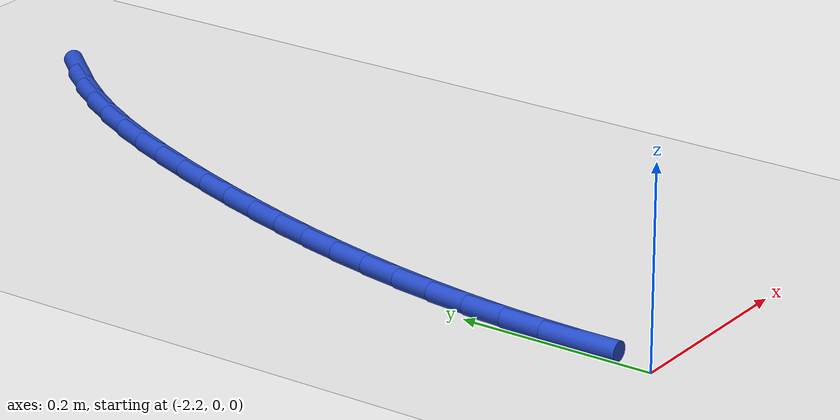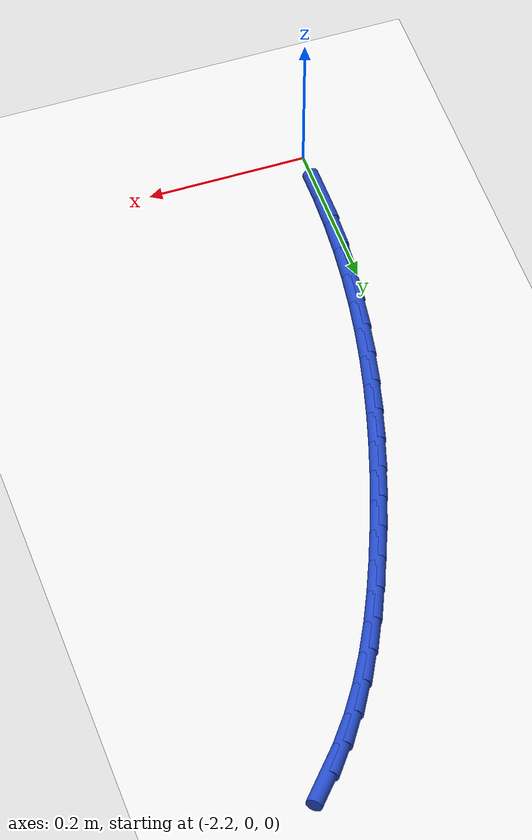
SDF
<sdf version="1.6">
 <world name="default">
  <model name="ground_plane">
   <static>1</static>
   <link name="link">
    <collision name="collision">
     <geometry><plane><normal>0 0 1</normal><size>100 100</size></plane></geometry>
     <surface><friction><ode><mu>100</mu><mu2>50</mu2></ode></friction></surface>
    </collision>
    <visual name="visual">
     <cast_shadows>0</cast_shadows>
     <geometry><plane><normal>0 0 1</normal><size>100 100</size></plane></geometry>
     <material>
      <script><uri>file://media/materials/scripts/gazebo.material</uri><name>Gazebo/WhiteGlow</name></script>
     </material>
    </visual>
   </link>
  </model>
  <model name="line">
   <link name="link_60">
    <pose>-1.9241924118541454 0.8781822889843405 0.01 0 1.57 0.8636986211424419</pose>
    <collision name="collision">
     <geometry><cylinder><radius>0.01</radius><length>0.08</length></cylinder></geometry>
    </collision>
    <visual name="visual">
     <material>
      <script><name>Gazebo/Blue</name><uri>file://media/materials/scripts/gazebo.material</uri></script>
     </material>
     <geometry><cylinder><radius>0.01</radius><length>0.08</length></cylinder></geometry>
    </visual>
   </link>
   <link name="link_61">
    <pose>-1.9518622245245227 0.8458007988393315 0.01 0 1.57 0.9357653783498592</pose>
    <collision name="collision">
     <geometry><cylinder><radius>0.01</radius><length>0.08</length></cylinder></geometry>
    </collision>
    <visual name="visual">
     <material>
      <script><name>Gazebo/Blue</name><uri>file://media/materials/scripts/gazebo.material</uri></script>
     </material>
     <geometry><cylinder><radius>0.01</radius><length>0.08</length></cylinder></geometry>
    </visual>
   </link>
   <link name="link_62">
    <pose>-1.9771398031395968 0.8114958162180252 0.01 0 1.57 1.00153983812924</pose>
    <collision name="collision">
     <geometry><cylinder><radius>0.01</radius><length>0.08</length></cylinder></geometry>
    </collision>
    <visual name="visual">
     <material>
      <script><name>Gazebo/Blue</name><uri>file://media/materials/scripts/gazebo.material</uri></script>
     </material>
     <geometry><cylinder><radius>0.01</radius><length>0.08</length></cylinder></geometry>
    </visual>
   </link>
   <link name="link_63">
    <pose>-2.0001850677938275 0.7754830928339339 0.01 0 1.57 1.058255667308963</pose>
    <collision name="collision">
     <geometry><cylinder><radius>0.01</radius><length>0.08</length></cylinder></geometry>
    </collision>
    <visual name="visual">
     <material>
      <script><name>Gazebo/Blue</name><uri>file://media/materials/scripts/gazebo.material</uri></script>
     </material>
     <geometry><cylinder><radius>0.01</radius><length>0.08</length></cylinder></geometry>
    </visual>
   </link>
   <link name="link_64">
    <pose>-2.0212516559603655 0.7380446291928524 0.01 0 1.57 1.1061017269262252</pose>
    <collision name="collision">
     <geometry><cylinder><radius>0.01</radius><length>0.08</length></cylinder></geometry>
    </collision>
    <visual name="visual">
     <material>
      <script><name>Gazebo/Blue</name><uri>file://media/materials/scripts/gazebo.material</uri></script>
     </material>
     <geometry><cylinder><radius>0.01</radius><length>0.08</length></cylinder></geometry>
    </visual>
   </link>
   <link name="link_65">
    <pose>-2.040593259032498 0.699462463916707 0.01 0 1.57 1.1454029630622684</pose>
    <collision name="collision">
     <geometry><cylinder><radius>0.01</radius><length>0.08</length></cylinder></geometry>
    </collision>
    <visual name="visual">
     <material>
      <script><name>Gazebo/Blue</name><uri>file://media/materials/scripts/gazebo.material</uri></script>
     </material>
     <geometry><cylinder><radius>0.01</radius><length>0.08</length></cylinder></geometry>
    </visual>
   </link>
   <link name="link_66">
    <pose>-2.058463568403511 0.6600186356274222 0.01 0 1.57 1.1765105414277839</pose>
    <collision name="collision">
     <geometry><cylinder><radius>0.01</radius><length>0.08</length></cylinder></geometry>
    </collision>
    <visual name="visual">
     <material>
      <script><name>Gazebo/Blue</name><uri>file://media/materials/scripts/gazebo.material</uri></script>
     </material>
     <geometry><cylinder><radius>0.01</radius><length>0.08</length></cylinder></geometry>
    </visual>
   </link>
   <link name="link_67">
    <pose>-2.075116275466693 0.6199951829469256 0.01 0 1.57 1.1997668262292716</pose>
    <collision name="collision">
     <geometry><cylinder><radius>0.01</radius><length>0.08</length></cylinder></geometry>
    </collision>
    <visual name="visual">
     <material>
      <script><name>Gazebo/Blue</name><uri>file://media/materials/scripts/gazebo.material</uri></script>
     </material>
     <geometry><cylinder><radius>0.01</radius><length>0.08</length></cylinder></geometry>
    </visual>
   </link>
   <link name="link_68">
    <pose>-2.090803648119191 0.5796727235456463 0.01 0 1.57 1.218696845572907</pose>
    <collision name="collision">
     <geometry><cylinder><radius>0.01</radius><length>0.08</length></cylinder></geometry>
    </collision>
    <visual name="visual">
     <material>
      <script><name>Gazebo/Blue</name><uri>file://media/materials/scripts/gazebo.material</uri></script>
     </material>
     <geometry><cylinder><radius>0.01</radius><length>0.08</length></cylinder></geometry>
    </visual>
   </link>
   <link name="link_69">
    <pose>-2.1056662346330697 0.5392203551790877 0.01 0 1.57 1.2390229925777008</pose>
    <collision name="collision">
     <geometry><cylinder><radius>0.01</radius><length>0.08</length></cylinder></geometry>
    </collision>
    <visual name="visual">
     <material>
      <script><name>Gazebo/Blue</name><uri>file://media/materials/scripts/gazebo.material</uri></script>
     </material>
     <geometry><cylinder><radius>0.01</radius><length>0.08</length></cylinder></geometry>
    </visual>
   </link>
   <link name="link_70">
    <pose>-2.11965430994449 0.49861724239972244 0.01 0 1.57 1.2612830900050607</pose>
    <collision name="collision">
     <geometry><cylinder><radius>0.01</radius><length>0.08</length></cylinder></geometry>
    </collision>
    <visual name="visual">
     <material>
      <script><name>Gazebo/Blue</name><uri>file://media/materials/scripts/gazebo.material</uri></script>
     </material>
     <geometry><cylinder><radius>0.01</radius><length>0.08</length></cylinder></geometry>
    </visual>
   </link>
   <link name="link_71">
    <pose>-2.132699604497532 0.4578240384181035 0.01 0 1.57 1.285445899426974</pose>
    <collision name="collision">
     <geometry><cylinder><radius>0.01</radius><length>0.08</length></cylinder></geometry>
    </collision>
    <visual name="visual">
     <material>
      <script><name>Gazebo/Blue</name><uri>file://media/materials/scripts/gazebo.material</uri></script>
     </material>
     <geometry><cylinder><radius>0.01</radius><length>0.08</length></cylinder></geometry>
    </visual>
   </link>
   <link name="link_72">
    <pose>-2.1447338487362777 0.4168013964447853 0.01 0 1.57 1.311463314324935</pose>
    <collision name="collision">
     <geometry><cylinder><radius>0.01</radius><length>0.08</length></cylinder></geometry>
    </collision>
    <visual name="visual">
     <material>
      <script><name>Gazebo/Blue</name><uri>file://media/materials/scripts/gazebo.material</uri></script>
     </material>
     <geometry><cylinder><radius>0.01</radius><length>0.08</length></cylinder></geometry>
    </visual>
   </link>
   <link name="link_73">
    <pose>-2.1556887731048078 0.37550996969032063 0.01 0 1.57 1.3392682920328736</pose>
    <collision name="collision">
     <geometry><cylinder><radius>0.01</radius><length>0.08</length></cylinder></geometry>
    </collision>
    <visual name="visual">
     <material>
      <script><name>Gazebo/Blue</name><uri>file://media/materials/scripts/gazebo.material</uri></script>
     </material>
     <geometry><cylinder><radius>0.01</radius><length>0.08</length></cylinder></geometry>
    </visual>
   </link>
   <link name="link_74">
    <pose>-2.165496108047202 0.3339104113652638 0.01 0 1.57 1.3687731327968193</pose>
    <collision name="collision">
     <geometry><cylinder><radius>0.01</radius><length>0.08</length></cylinder></geometry>
    </collision>
    <visual name="visual">
     <material>
      <script><name>Gazebo/Blue</name><uri>file://media/materials/scripts/gazebo.material</uri></script>
     </material>
     <geometry><cylinder><radius>0.01</radius><length>0.08</length></cylinder></geometry>
    </visual>
   </link>
   <link name="link_75">
    <pose>-2.1740875840075433 0.2919633746801679 0.01 0 1.57 1.3998682957806359</pose>
    <collision name="collision">
     <geometry><cylinder><radius>0.01</radius><length>0.08</length></cylinder></geometry>
    </collision>
    <visual name="visual">
     <material>
      <script><name>Gazebo/Blue</name><uri>file://media/materials/scripts/gazebo.material</uri></script>
     </material>
     <geometry><cylinder><radius>0.01</radius><length>0.08</length></cylinder></geometry>
    </visual>
   </link>
   <link name="link_76">
    <pose>-2.1813949314299115 0.24962951284558613 0.01 0 1.57 1.432421943132091</pose>
    <collision name="collision">
     <geometry><cylinder><radius>0.01</radius><length>0.08</length></cylinder></geometry>
    </collision>
    <visual name="visual">
     <material>
      <script><name>Gazebo/Blue</name><uri>file://media/materials/scripts/gazebo.material</uri></script>
     </material>
     <geometry><cylinder><radius>0.01</radius><length>0.08</length></cylinder></geometry>
    </visual>
   </link>
   <link name="link_77">
    <pose>-2.1873498807583878 0.20686947907207287 0.01 0 1.57 1.4662803823805088</pose>
    <collision name="collision">
     <geometry><cylinder><radius>0.01</radius><length>0.08</length></cylinder></geometry>
    </collision>
    <visual name="visual">
     <material>
      <script><name>Gazebo/Blue</name><uri>file://media/materials/scripts/gazebo.material</uri></script>
     </material>
     <geometry><cylinder><radius>0.01</radius><length>0.08</length></cylinder></geometry>
    </visual>
   </link>
   <link name="link_78">
    <pose>-2.191884162437053 0.16364392657018073 0.01 0 1.57 1.501269530837358</pose>
    <collision name="collision">
     <geometry><cylinder><radius>0.01</radius><length>0.08</length></cylinder></geometry>
    </collision>
    <visual name="visual">
     <material>
      <script><name>Gazebo/Blue</name><uri>file://media/materials/scripts/gazebo.material</uri></script>
     </material>
     <geometry><cylinder><radius>0.01</radius><length>0.08</length></cylinder></geometry>
    </visual>
   </link>
   <link name="link_79">
    <pose>-2.194929506909988 0.11991350855046419 0.01 0 1.57 1.5371971469965724</pose>
    <collision name="collision">
     <geometry><cylinder><radius>0.01</radius><length>0.08</length></cylinder></geometry>
    </collision>
    <visual name="visual">
     <material>
      <script><name>Gazebo/Blue</name><uri>file://media/materials/scripts/gazebo.material</uri></script>
     </material>
     <geometry><cylinder><radius>0.01</radius><length>0.08</length></cylinder></geometry>
    </visual>
   </link>
   <link name="link_80">
    <pose>-2.1964176552986836 0.0756389648617756 0.01 0 1.57 -1.5678817399227625</pose>
    <collision name="collision">
     <geometry><cylinder><radius>0.01</radius><length>0.08</length></cylinder></geometry>
    </collision>
    <visual name="visual">
     <material>
      <script><name>Gazebo/Blue</name><uri>file://media/materials/scripts/gazebo.material</uri></script>
     </material>
     <geometry><cylinder><radius>0.01</radius><length>0.08</length></cylinder></geometry>
    </visual>
   </link>
  </model>
 </world>
</sdf>
